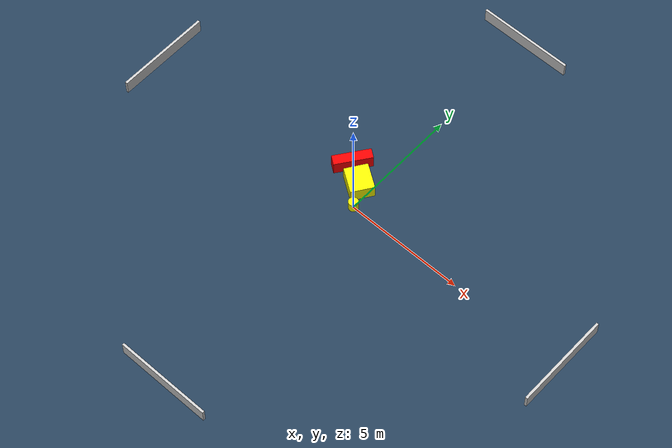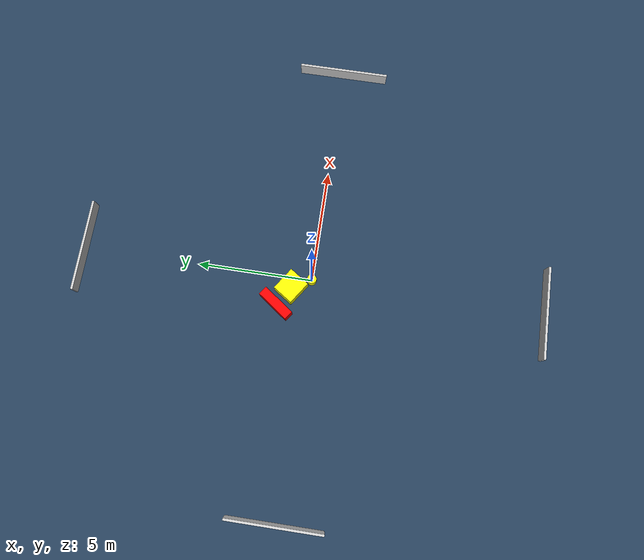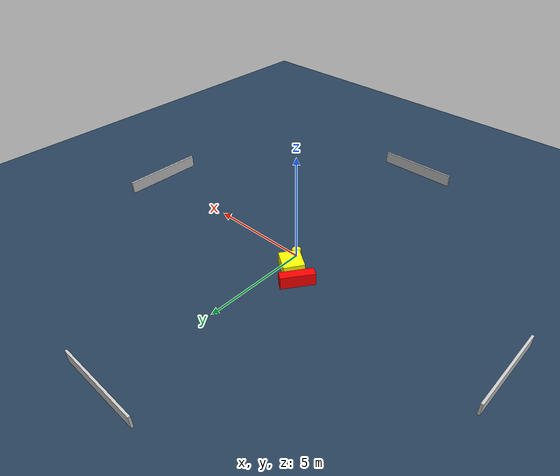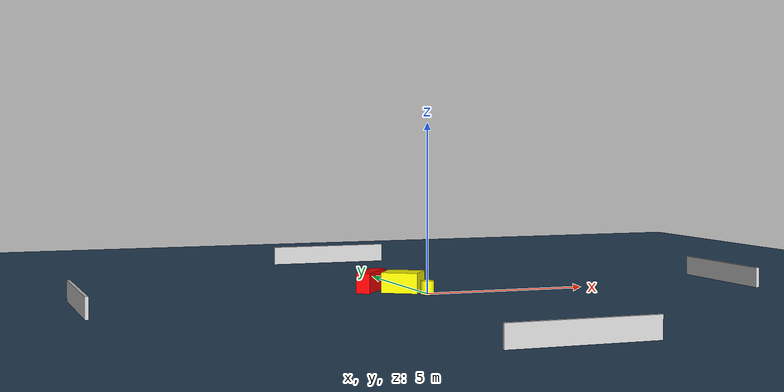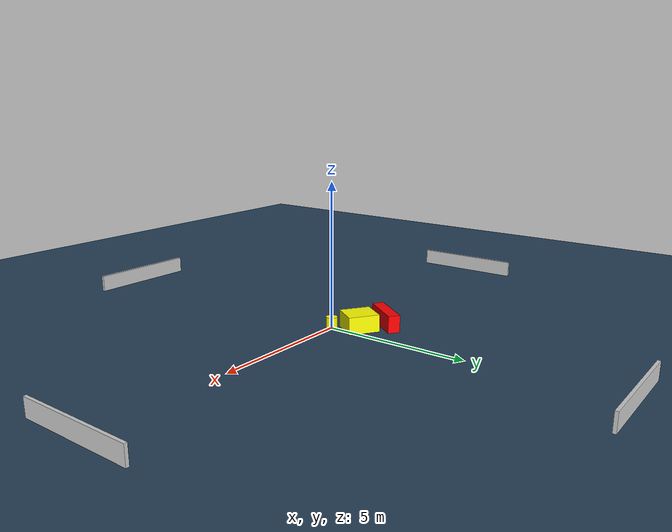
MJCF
<?xml version="1.0" ?>
<mujoco model="generated_environment">
  <option timestep="0.01" integrator="RK4" cone="elliptic"/>
  <default>
    <geom density="1"/>
  </default>
  <asset>
    <texture builtin="gradient" height="3072" name="skybox" rgb1="0.3 0.5 0.7" rgb2="0 0 0" type="skybox" width="512"/>
    <texture builtin="checker" height="300" name="groundplane" rgb1="0.2 0.3 0.4" rgb2="0.1 0.2 0.3" type="2d" width="300"/>
    <material name="groundplane" reflectance="0.2" texrepeat="5 5" texture="groundplane"/>
  </asset>
  <worldbody>
    <light dir="0 0 -1" directional="true" pos="0 0 1.5"/>
    <geom condim="3" friction="0.5 0.005 0.001" material="groundplane" name="floor" pos="0 0 0" size="0 0 0.05" type="plane"/>
    <body name="walls">
      <geom name="wall_1" condim="4" pos="-10.0 0.0 0.3" rgba="0.800000011920929 0.800000011920929 0.800000011920929 1.0" size="0.05 2.0 0.3" type="box"/>
      <geom name="wall_2" condim="4" pos="10.0 0.0 0.3" rgba="0.800000011920929 0.800000011920929 0.800000011920929 1.0" size="0.05 2.0 0.3" type="box"/>
      <geom name="wall_3" condim="4" pos="0.0 -10.0 0.3" rgba="0.800000011920929 0.800000011920929 0.800000011920929 1.0" size="2.0 0.05 0.3" type="box"/>
      <geom name="wall_4" condim="4" pos="0.0 10.0 0.3" rgba="0.800000011920929 0.800000011920929 0.800000011920929 1.0" size="2.0 0.05 0.3" type="box"/>
    </body>
    <body name="robot">
      <joint name="joint_x" type="slide" pos="0 0 0" axis="1 0 0"/>
      <joint name="joint_y" type="slide" pos="0 0 0" axis="0 1 0"/>
      <geom name="robot" type="cylinder" pos="0.0 0.0 0.2" size="0.2 0.2 0.0" mass="5.0" friction="1.0 0.005 0.0001" condim="4" rgba="1.0 1.0 0.0 1.0"/>
    </body>
    <body name="obstacle_1_movable">
      <geom name="obstacle_1_movable" condim="4" pos="-0.4593845885130897 0.8262656367213081 0.3" euler="0 0 56.1459903394508" friction="0.0 0.005 0.001" rgba="1.0 1.0 0.0 1.0" size="0.4788528519727871 0.5433796729949238 0.3" type="box" mass="0.1"/>
      <joint type="free"/>
    </body>
    <body name="obstacle_2_static">
      <geom name="obstacle_2_static" condim="4" pos="-1.2838254948039638 1.3569585257110242 0.3" euler="0 0 324.2172671410454" friction="0.0 0.005 0.001" rgba="1.0 0.0 0.0 1.0" size="0.20637718926133983 0.7747456972236519 0.3" type="box"/>
    </body>
  </worldbody>
  <actuator>
    <motor name="actuator_x" joint="joint_x" gear="1" ctrlrange="-1 1"/>
    <motor name="actuator_y" joint="joint_y" gear="1" ctrlrange="-1 1"/>
  </actuator>
</mujoco>
